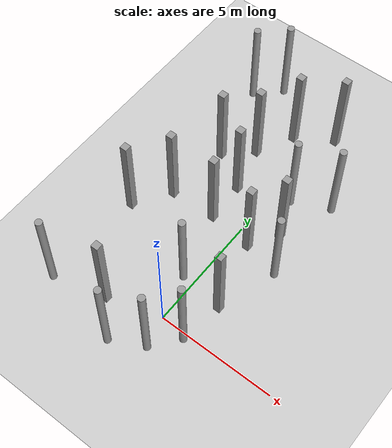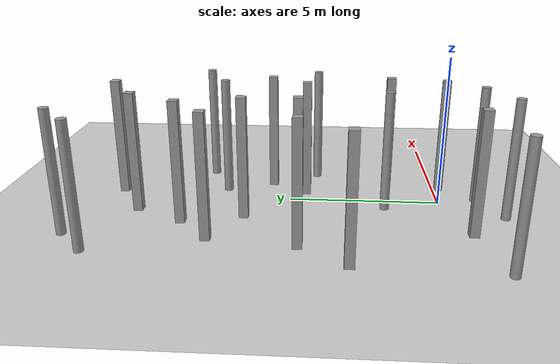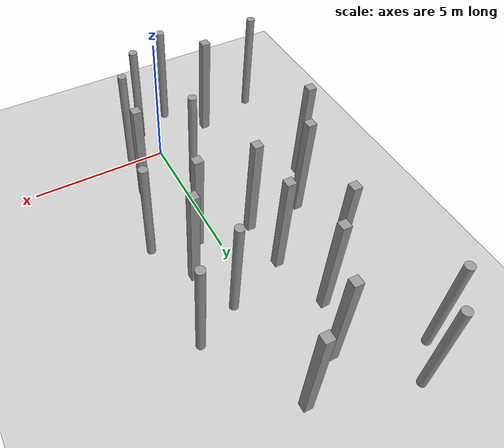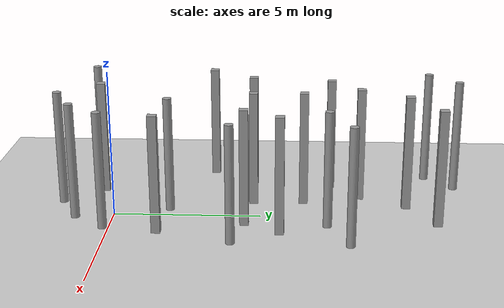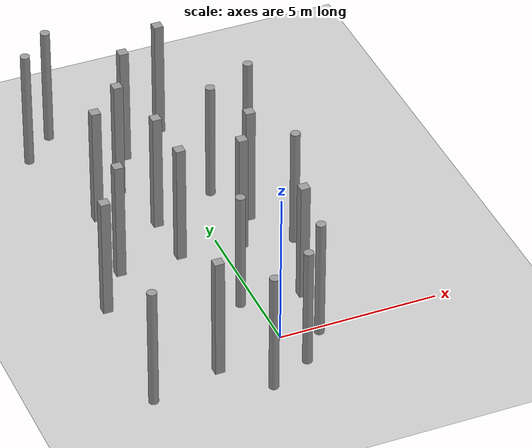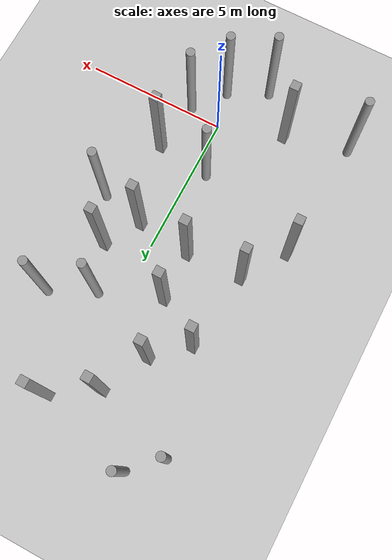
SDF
<sdf version="1.6">
 <world name="default">
  <model name="ground_plane">
   <static>1</static>
   <link name="link">
    <collision name="collision">
     <geometry><plane><normal>0 0 1</normal><size>100 100</size></plane></geometry>
    </collision>
    <visual name="visual">
     <cast_shadows>0</cast_shadows>
     <geometry><plane><normal>0 0 1</normal><size>100 100</size></plane></geometry>
     <material>
      <script><uri>file://media/materials/scripts/gazebo.material</uri><name>Gazebo/Gray</name></script>
     </material>
    </visual>
   </link>
  </model>
  <model name="unit_box">
   <link name="link">
    <inertial>
     <mass>1000</mass>
     <inertia><ixx>166.667</ixx><ixy>0</ixy><ixz>0</ixz><iyy>166.667</iyy><iyz>0</iyz><izz>166.667</izz></inertia>
    </inertial>
    <visual name="visual">
     <geometry><box><size>0.3 0.3 4</size></box></geometry>
     <material>
      <script><name>Gazebo/Grey</name><uri>file://media/materials/scripts/gazebo.material</uri></script>
      <shader type="vertex"><normal_map>__default__</normal_map></shader>
      <ambient>0.3 0.3 0.3 1</ambient>
      <diffuse>0.7 0.7 0.7 1</diffuse>
      <specular>0.01 0.01 0.01 1</specular>
      <emissive>0 0 0 1</emissive>
     </material>
    </visual>
    <collision name="collision">
     <geometry><box><size>0.3 0.3 4</size></box></geometry>
     <surface>
      <friction>
       <ode><mu>1</mu><mu2>1</mu2><fdir1>0 0 0</fdir1><slip1>0</slip1><slip2>0</slip2></ode>
       <torsional>
        <coefficient>1</coefficient>
        <patch_radius>0</patch_radius>
        <surface_radius>0</surface_radius>
        <use_patch_radius>1</use_patch_radius>
        <ode><slip>0</slip></ode>
       </torsional>
      </friction>
      <bounce><restitution_coefficient>0</restitution_coefficient><threshold>1e+06</threshold></bounce>
      <contact>
       <collide_without_contact>0</collide_without_contact>
       <collide_without_contact_bitmask>1</collide_without_contact_bitmask>
       <collide_bitmask>1</collide_bitmask>
       <ode>
        <soft_cfm>0</soft_cfm>
        <soft_erp>0.2</soft_erp>
        <kp>1e+13</kp>
        <kd>1</kd>
        <max_vel>0.01</max_vel>
        <min_depth>0</min_depth>
       </ode>
       <bullet>
        <split_impulse>1</split_impulse>
        <split_impulse_penetration_threshold>-0.01</split_impulse_penetration_threshold>
        <soft_cfm>0</soft_cfm>
        <soft_erp>0.2</soft_erp>
        <kp>1e+13</kp>
        <kd>1</kd>
       </bullet>
      </contact>
     </surface>
    </collision>
   </link>
   <static>0</static>
   <pose>-1.26727 4.71517 2 3e-05 2e-06 -0.004701</pose>
  </model>
  <model name="unit_box_clone">
   <link name="link">
    <inertial>
     <mass>1000</mass>
     <inertia><ixx>166.667</ixx><ixy>0</ixy><ixz>0</ixz><iyy>166.667</iyy><iyz>0</iyz><izz>166.667</izz></inertia>
    </inertial>
    <visual name="visual">
     <geometry><box><size>0.3 0.3 4</size></box></geometry>
     <material>
      <script><name>Gazebo/Grey</name><uri>file://media/materials/scripts/gazebo.material</uri></script>
      <shader type="vertex"><normal_map>__default__</normal_map></shader>
      <ambient>0.3 0.3 0.3 1</ambient>
      <diffuse>0.7 0.7 0.7 1</diffuse>
      <specular>0.01 0.01 0.01 1</specular>
      <emissive>0 0 0 1</emissive>
     </material>
    </visual>
    <collision name="collision">
     <geometry><box><size>0.3 0.3 4</size></box></geometry>
     <surface>
      <friction>
       <ode><mu>1</mu><mu2>1</mu2><fdir1>0 0 0</fdir1><slip1>0</slip1><slip2>0</slip2></ode>
       <torsional>
        <coefficient>1</coefficient>
        <patch_radius>0</patch_radius>
        <surface_radius>0</surface_radius>
        <use_patch_radius>1</use_patch_radius>
        <ode><slip>0</slip></ode>
       </torsional>
      </friction>
      <bounce><restitution_coefficient>0</restitution_coefficient><threshold>1e+06</threshold></bounce>
      <contact>
       <collide_without_contact>0</collide_without_contact>
       <collide_without_contact_bitmask>1</collide_without_contact_bitmask>
       <collide_bitmask>1</collide_bitmask>
       <ode>
        <soft_cfm>0</soft_cfm>
        <soft_erp>0.2</soft_erp>
        <kp>1e+13</kp>
        <kd>1</kd>
        <max_vel>0.01</max_vel>
        <min_depth>0</min_depth>
       </ode>
       <bullet>
        <split_impulse>1</split_impulse>
        <split_impulse_penetration_threshold>-0.01</split_impulse_penetration_threshold>
        <soft_cfm>0</soft_cfm>
        <soft_erp>0.2</soft_erp>
        <kp>1e+13</kp>
        <kd>1</kd>
       </bullet>
      </contact>
     </surface>
    </collision>
   </link>
   <static>0</static>
   <pose>-2.25019 -0.681054 2 -0 2e-06 -0.006906</pose>
  </model>
  <model name="unit_box_clone_1">
   <link name="link">
    <inertial>
     <mass>1000</mass>
     <inertia><ixx>166.667</ixx><ixy>0</ixy><ixz>0</ixz><iyy>166.667</iyy><iyz>0</iyz><izz>166.667</izz></inertia>
    </inertial>
    <visual name="visual">
     <geometry><box><size>0.3 0.3 4</size></box></geometry>
     <material>
      <script><name>Gazebo/Grey</name><uri>file://media/materials/scripts/gazebo.material</uri></script>
      <shader type="vertex"><normal_map>__default__</normal_map></shader>
      <ambient>0.3 0.3 0.3 1</ambient>
      <diffuse>0.7 0.7 0.7 1</diffuse>
      <specular>0.01 0.01 0.01 1</specular>
      <emissive>0 0 0 1</emissive>
     </material>
    </visual>
    <collision name="collision">
     <geometry><box><size>0.3 0.3 4</size></box></geometry>
     <surface>
      <friction>
       <ode><mu>1</mu><mu2>1</mu2><fdir1>0 0 0</fdir1><slip1>0</slip1><slip2>0</slip2></ode>
       <torsional>
        <coefficient>1</coefficient>
        <patch_radius>0</patch_radius>
        <surface_radius>0</surface_radius>
        <use_patch_radius>1</use_patch_radius>
        <ode><slip>0</slip></ode>
       </torsional>
      </friction>
      <bounce><restitution_coefficient>0</restitution_coefficient><threshold>1e+06</threshold></bounce>
      <contact>
       <collide_without_contact>0</collide_without_contact>
       <collide_without_contact_bitmask>1</collide_without_contact_bitmask>
       <collide_bitmask>1</collide_bitmask>
       <ode>
        <soft_cfm>0</soft_cfm>
        <soft_erp>0.2</soft_erp>
        <kp>1e+13</kp>
        <kd>1</kd>
        <max_vel>0.01</max_vel>
        <min_depth>0</min_depth>
       </ode>
       <bullet>
        <split_impulse>1</split_impulse>
        <split_impulse_penetration_threshold>-0.01</split_impulse_penetration_threshold>
        <soft_cfm>0</soft_cfm>
        <soft_erp>0.2</soft_erp>
        <kp>1e+13</kp>
        <kd>1</kd>
       </bullet>
      </contact>
     </surface>
    </collision>
   </link>
   <static>0</static>
   <pose>-2.89921 7.41403 2 -1.9e-05 4e-06 -0.002147</pose>
  </model>
  <model name="unit_box_clone_19">
   <link name="link">
    <inertial>
     <mass>1000</mass>
     <inertia><ixx>166.667</ixx><ixy>0</ixy><ixz>0</ixz><iyy>166.667</iyy><iyz>0</iyz><izz>166.667</izz></inertia>
    </inertial>
    <visual name="visual">
     <geometry><box><size>0.3 0.3 4</size></box></geometry>
     <material>
      <script><name>Gazebo/Grey</name><uri>file://media/materials/scripts/gazebo.material</uri></script>
      <shader type="vertex"><normal_map>__default__</normal_map></shader>
      <ambient>0.3 0.3 0.3 1</ambient>
      <diffuse>0.7 0.7 0.7 1</diffuse>
      <specular>0.01 0.01 0.01 1</specular>
      <emissive>0 0 0 1</emissive>
     </material>
    </visual>
    <collision name="collision">
     <geometry><box><size>0.3 0.3 4</size></box></geometry>
     <surface>
      <friction>
       <ode><mu>1</mu><mu2>1</mu2><fdir1>0 0 0</fdir1><slip1>0</slip1><slip2>0</slip2></ode>
       <torsional>
        <coefficient>1</coefficient>
        <patch_radius>0</patch_radius>
        <surface_radius>0</surface_radius>
        <use_patch_radius>1</use_patch_radius>
        <ode><slip>0</slip></ode>
       </torsional>
      </friction>
      <bounce><restitution_coefficient>0</restitution_coefficient><threshold>1e+06</threshold></bounce>
      <contact>
       <collide_without_contact>0</collide_without_contact>
       <collide_without_contact_bitmask>1</collide_without_contact_bitmask>
       <collide_bitmask>1</collide_bitmask>
       <ode>
        <soft_cfm>0</soft_cfm>
        <soft_erp>0.2</soft_erp>
        <kp>1e+13</kp>
        <kd>1</kd>
        <max_vel>0.01</max_vel>
        <min_depth>0</min_depth>
       </ode>
       <bullet>
        <split_impulse>1</split_impulse>
        <split_impulse_penetration_threshold>-0.01</split_impulse_penetration_threshold>
        <soft_cfm>0</soft_cfm>
        <soft_erp>0.2</soft_erp>
        <kp>1e+13</kp>
        <kd>1</kd>
       </bullet>
      </contact>
     </surface>
    </collision>
   </link>
   <static>0</static>
   <pose>-1.32794 6.44926 2 3e-05 2e-06 -0.004701</pose>
  </model>
  <model name="unit_box_clone_20">
   <link name="link">
    <inertial>
     <mass>1000</mass>
     <inertia><ixx>166.667</ixx><ixy>0</ixy><ixz>0</ixz><iyy>166.667</iyy><iyz>0</iyz><izz>166.667</izz></inertia>
    </inertial>
    <visual name="visual">
     <geometry><box><size>0.3 0.3 4</size></box></geometry>
     <material>
      <script><name>Gazebo/Grey</name><uri>file://media/materials/scripts/gazebo.material</uri></script>
      <shader type="vertex"><normal_map>__default__</normal_map></shader>
      <ambient>0.3 0.3 0.3 1</ambient>
      <diffuse>0.7 0.7 0.7 1</diffuse>
      <specular>0.01 0.01 0.01 1</specular>
      <emissive>0 0 0 1</emissive>
     </material>
    </visual>
    <collision name="collision">
     <geometry><box><size>0.3 0.3 4</size></box></geometry>
     <surface>
      <friction>
       <ode><mu>1</mu><mu2>1</mu2><fdir1>0 0 0</fdir1><slip1>0</slip1><slip2>0</slip2></ode>
       <torsional>
        <coefficient>1</coefficient>
        <patch_radius>0</patch_radius>
        <surface_radius>0</surface_radius>
        <use_patch_radius>1</use_patch_radius>
        <ode><slip>0</slip></ode>
       </torsional>
      </friction>
      <bounce><restitution_coefficient>0</restitution_coefficient><threshold>1e+06</threshold></bounce>
      <contact>
       <collide_without_contact>0</collide_without_contact>
       <collide_without_contact_bitmask>1</collide_without_contact_bitmask>
       <collide_bitmask>1</collide_bitmask>
       <ode>
        <soft_cfm>0</soft_cfm>
        <soft_erp>0.2</soft_erp>
        <kp>1e+13</kp>
        <kd>1</kd>
        <max_vel>0.01</max_vel>
        <min_depth>0</min_depth>
       </ode>
       <bullet>
        <split_impulse>1</split_impulse>
        <split_impulse_penetration_threshold>-0.01</split_impulse_penetration_threshold>
        <soft_cfm>0</soft_cfm>
        <soft_erp>0.2</soft_erp>
        <kp>1e+13</kp>
        <kd>1</kd>
       </bullet>
      </contact>
     </surface>
    </collision>
   </link>
   <static>0</static>
   <pose>0.641915 4.48461 2.00001 -8.9e-05 3e-06 -0.000521</pose>
  </model>
  <model name="unit_box_clone_21">
   <link name="link">
    <inertial>
     <mass>1000</mass>
     <inertia><ixx>166.667</ixx><ixy>0</ixy><ixz>0</ixz><iyy>166.667</iyy><iyz>0</iyz><izz>166.667</izz></inertia>
    </inertial>
    <visual name="visual">
     <geometry><box><size>0.3 0.3 4</size></box></geometry>
     <material>
      <script><name>Gazebo/Grey</name><uri>file://media/materials/scripts/gazebo.material</uri></script>
      <shader type="vertex"><normal_map>__default__</normal_map></shader>
      <ambient>0.3 0.3 0.3 1</ambient>
      <diffuse>0.7 0.7 0.7 1</diffuse>
      <specular>0.01 0.01 0.01 1</specular>
      <emissive>0 0 0 1</emissive>
     </material>
    </visual>
    <collision name="collision">
     <geometry><box><size>0.3 0.3 4</size></box></geometry>
     <surface>
      <friction>
       <ode><mu>1</mu><mu2>1</mu2><fdir1>0 0 0</fdir1><slip1>0</slip1><slip2>0</slip2></ode>
       <torsional>
        <coefficient>1</coefficient>
        <patch_radius>0</patch_radius>
        <surface_radius>0</surface_radius>
        <use_patch_radius>1</use_patch_radius>
        <ode><slip>0</slip></ode>
       </torsional>
      </friction>
      <bounce><restitution_coefficient>0</restitution_coefficient><threshold>1e+06</threshold></bounce>
      <contact>
       <collide_without_contact>0</collide_without_contact>
       <collide_without_contact_bitmask>1</collide_without_contact_bitmask>
       <collide_bitmask>1</collide_bitmask>
       <ode>
        <soft_cfm>0</soft_cfm>
        <soft_erp>0.2</soft_erp>
        <kp>1e+13</kp>
        <kd>1</kd>
        <max_vel>0.01</max_vel>
        <min_depth>0</min_depth>
       </ode>
       <bullet>
        <split_impulse>1</split_impulse>
        <split_impulse_penetration_threshold>-0.01</split_impulse_penetration_threshold>
        <soft_cfm>0</soft_cfm>
        <soft_erp>0.2</soft_erp>
        <kp>1e+13</kp>
        <kd>1</kd>
       </bullet>
      </contact>
     </surface>
    </collision>
   </link>
   <static>0</static>
   <pose>-1.80198 8.4163 2.00003 -0.000171 6e-06 -0.007714</pose>
  </model>
  <model name="unit_box_clone_22">
   <link name="link">
    <inertial>
     <mass>1000</mass>
     <inertia><ixx>166.667</ixx><ixy>0</ixy><ixz>0</ixz><iyy>166.667</iyy><iyz>0</iyz><izz>166.667</izz></inertia>
    </inertial>
    <visual name="visual">
     <geometry><box><size>0.3 0.3 4</size></box></geometry>
     <material>
      <script><name>Gazebo/Grey</name><uri>file://media/materials/scripts/gazebo.material</uri></script>
      <shader type="vertex"><normal_map>__default__</normal_map></shader>
      <ambient>0.3 0.3 0.3 1</ambient>
      <diffuse>0.7 0.7 0.7 1</diffuse>
      <specular>0.01 0.01 0.01 1</specular>
      <emissive>0 0 0 1</emissive>
     </material>
    </visual>
    <collision name="collision">
     <geometry><box><size>0.3 0.3 4</size></box></geometry>
     <surface>
      <friction>
       <ode><mu>1</mu><mu2>1</mu2><fdir1>0 0 0</fdir1><slip1>0</slip1><slip2>0</slip2></ode>
       <torsional>
        <coefficient>1</coefficient>
        <patch_radius>0</patch_radius>
        <surface_radius>0</surface_radius>
        <use_patch_radius>1</use_patch_radius>
        <ode><slip>0</slip></ode>
       </torsional>
      </friction>
      <bounce><restitution_coefficient>0</restitution_coefficient><threshold>1e+06</threshold></bounce>
      <contact>
       <collide_without_contact>0</collide_without_contact>
       <collide_without_contact_bitmask>1</collide_without_contact_bitmask>
       <collide_bitmask>1</collide_bitmask>
       <ode>
        <soft_cfm>0</soft_cfm>
        <soft_erp>0.2</soft_erp>
        <kp>1e+13</kp>
        <kd>1</kd>
        <max_vel>0.01</max_vel>
        <min_depth>0</min_depth>
       </ode>
       <bullet>
        <split_impulse>1</split_impulse>
        <split_impulse_penetration_threshold>-0.01</split_impulse_penetration_threshold>
        <soft_cfm>0</soft_cfm>
        <soft_erp>0.2</soft_erp>
        <kp>1e+13</kp>
        <kd>1</kd>
       </bullet>
      </contact>
     </surface>
    </collision>
   </link>
   <static>0</static>
   <pose>-0.999845 10 2.00001 -4e-05 9e-06 -0.013989</pose>
  </model>
  <model name="unit_box_clone_26">
   <link name="link">
    <inertial>
     <mass>1000</mass>
     <inertia><ixx>166.667</ixx><ixy>0</ixy><ixz>0</ixz><iyy>166.667</iyy><iyz>0</iyz><izz>166.667</izz></inertia>
    </inertial>
    <visual name="visual">
     <geometry><box><size>0.3 0.3 4</size></box></geometry>
     <material>
      <script><name>Gazebo/Grey</name><uri>file://media/materials/scripts/gazebo.material</uri></script>
      <shader type="vertex"><normal_map>__default__</normal_map></shader>
      <ambient>0.3 0.3 0.3 1</ambient>
      <diffuse>0.7 0.7 0.7 1</diffuse>
      <specular>0.01 0.01 0.01 1</specular>
      <emissive>0 0 0 1</emissive>
     </material>
    </visual>
    <collision name="collision">
     <geometry><box><size>0.3 0.3 4</size></box></geometry>
     <surface>
      <friction>
       <ode><mu>1</mu><mu2>1</mu2><fdir1>0 0 0</fdir1><slip1>0</slip1><slip2>0</slip2></ode>
       <torsional>
        <coefficient>1</coefficient>
        <patch_radius>0</patch_radius>
        <surface_radius>0</surface_radius>
        <use_patch_radius>1</use_patch_radius>
        <ode><slip>0</slip></ode>
       </torsional>
      </friction>
      <bounce><restitution_coefficient>0</restitution_coefficient><threshold>1e+06</threshold></bounce>
      <contact>
       <collide_without_contact>0</collide_without_contact>
       <collide_without_contact_bitmask>1</collide_without_contact_bitmask>
       <collide_bitmask>1</collide_bitmask>
       <ode>
        <soft_cfm>0</soft_cfm>
        <soft_erp>0.2</soft_erp>
        <kp>1e+13</kp>
        <kd>1</kd>
        <max_vel>0.01</max_vel>
        <min_depth>0</min_depth>
       </ode>
       <bullet>
        <split_impulse>1</split_impulse>
        <split_impulse_penetration_threshold>-0.01</split_impulse_penetration_threshold>
        <soft_cfm>0</soft_cfm>
        <soft_erp>0.2</soft_erp>
        <kp>1e+13</kp>
        <kd>1</kd>
       </bullet>
      </contact>
     </surface>
    </collision>
   </link>
   <static>0</static>
   <pose>-3.24148 4.64145 2.00001 5.3e-05 3e-06 -0.003484</pose>
  </model>
  <model name="unit_cylinder_clone_3">
   <link name="link">
    <inertial>
     <mass>1000</mass>
     <inertia><ixx>145.833</ixx><ixy>0</ixy><ixz>0</ixz><iyy>145.833</iyy><iyz>0</iyz><izz>125</izz></inertia>
    </inertial>
    <visual name="visual">
     <geometry><cylinder><radius>0.15</radius><length>4</length></cylinder></geometry>
     <material>
      <script><name>Gazebo/Grey</name><uri>file://media/materials/scripts/gazebo.material</uri></script>
      <shader type="vertex"><normal_map>__default__</normal_map></shader>
      <ambient>0.3 0.3 0.3 1</ambient>
      <diffuse>0.7 0.7 0.7 1</diffuse>
      <specular>0.01 0.01 0.01 1</specular>
      <emissive>0 0 0 1</emissive>
     </material>
    </visual>
    <collision name="collision">
     <geometry><cylinder><radius>0.15</radius><length>4</length></cylinder></geometry>
     <surface>
      <friction>
       <ode><mu>1</mu><mu2>1</mu2><fdir1>0 0 0</fdir1><slip1>0</slip1><slip2>0</slip2></ode>
       <torsional>
        <coefficient>1</coefficient>
        <patch_radius>0</patch_radius>
        <surface_radius>0</surface_radius>
        <use_patch_radius>1</use_patch_radius>
        <ode><slip>0</slip></ode>
       </torsional>
      </friction>
      <bounce><restitution_coefficient>0</restitution_coefficient><threshold>1e+06</threshold></bounce>
      <contact>
       <collide_without_contact>0</collide_without_contact>
       <collide_without_contact_bitmask>1</collide_without_contact_bitmask>
       <collide_bitmask>1</collide_bitmask>
       <ode>
        <soft_cfm>0</soft_cfm>
        <soft_erp>0.2</soft_erp>
        <kp>1e+13</kp>
        <kd>1</kd>
        <max_vel>0.01</max_vel>
        <min_depth>0</min_depth>
       </ode>
       <bullet>
        <split_impulse>1</split_impulse>
        <split_impulse_penetration_threshold>-0.01</split_impulse_penetration_threshold>
        <soft_cfm>0</soft_cfm>
        <soft_erp>0.2</soft_erp>
        <kp>1e+13</kp>
        <kd>1</kd>
       </bullet>
      </contact>
     </surface>
    </collision>
   </link>
   <static>0</static>
   <pose>0.763548 7.25614 1.99998 -2e-06 -0 -0.17322</pose>
  </model>
  <model name="unit_cylinder_clone_1_clone_8">
   <link name="link">
    <inertial>
     <mass>1000</mass>
     <inertia><ixx>145.833</ixx><ixy>0</ixy><ixz>0</ixz><iyy>145.833</iyy><iyz>0</iyz><izz>125</izz></inertia>
    </inertial>
    <visual name="visual">
     <geometry><cylinder><radius>0.15</radius><length>4</length></cylinder></geometry>
     <material>
      <script><name>Gazebo/Grey</name><uri>file://media/materials/scripts/gazebo.material</uri></script>
      <shader type="vertex"><normal_map>__default__</normal_map></shader>
      <ambient>0.3 0.3 0.3 1</ambient>
      <diffuse>0.7 0.7 0.7 1</diffuse>
      <specular>0.01 0.01 0.01 1</specular>
      <emissive>0 0 0 1</emissive>
     </material>
    </visual>
    <collision name="collision">
     <geometry><cylinder><radius>0.15</radius><length>4</length></cylinder></geometry>
     <surface>
      <friction>
       <ode><mu>1</mu><mu2>1</mu2><fdir1>0 0 0</fdir1><slip1>0</slip1><slip2>0</slip2></ode>
       <torsional>
        <coefficient>1</coefficient>
        <patch_radius>0</patch_radius>
        <surface_radius>0</surface_radius>
        <use_patch_radius>1</use_patch_radius>
        <ode><slip>0</slip></ode>
       </torsional>
      </friction>
      <bounce><restitution_coefficient>0</restitution_coefficient><threshold>1e+06</threshold></bounce>
      <contact>
       <collide_without_contact>0</collide_without_contact>
       <collide_without_contact_bitmask>1</collide_without_contact_bitmask>
       <collide_bitmask>1</collide_bitmask>
       <ode>
        <soft_cfm>0</soft_cfm>
        <soft_erp>0.2</soft_erp>
        <kp>1e+13</kp>
        <kd>1</kd>
        <max_vel>0.01</max_vel>
        <min_depth>0</min_depth>
       </ode>
       <bullet>
        <split_impulse>1</split_impulse>
        <split_impulse_penetration_threshold>-0.01</split_impulse_penetration_threshold>
        <soft_cfm>0</soft_cfm>
        <soft_erp>0.2</soft_erp>
        <kp>1e+13</kp>
        <kd>1</kd>
       </bullet>
      </contact>
     </surface>
    </collision>
   </link>
   <static>0</static>
   <pose>0.29317 -1.28277 1.99995 -0.000273 -6e-06 -0.814634</pose>
  </model>
  <model name="unit_cylinder_clone_1_clone_11">
   <link name="link">
    <inertial>
     <mass>1000</mass>
     <inertia><ixx>145.833</ixx><ixy>0</ixy><ixz>0</ixz><iyy>145.833</iyy><iyz>0</iyz><izz>125</izz></inertia>
    </inertial>
    <visual name="visual">
     <geometry><cylinder><radius>0.15</radius><length>4</length></cylinder></geometry>
     <material>
      <script><name>Gazebo/Grey</name><uri>file://media/materials/scripts/gazebo.material</uri></script>
      <shader type="vertex"><normal_map>__default__</normal_map></shader>
      <ambient>0.3 0.3 0.3 1</ambient>
      <diffuse>0.7 0.7 0.7 1</diffuse>
      <specular>0.01 0.01 0.01 1</specular>
      <emissive>0 0 0 1</emissive>
     </material>
    </visual>
    <collision name="collision">
     <geometry><cylinder><radius>0.15</radius><length>4</length></cylinder></geometry>
     <surface>
      <friction>
       <ode><mu>1</mu><mu2>1</mu2><fdir1>0 0 0</fdir1><slip1>0</slip1><slip2>0</slip2></ode>
       <torsional>
        <coefficient>1</coefficient>
        <patch_radius>0</patch_radius>
        <surface_radius>0</surface_radius>
        <use_patch_radius>1</use_patch_radius>
        <ode><slip>0</slip></ode>
       </torsional>
      </friction>
      <bounce><restitution_coefficient>0</restitution_coefficient><threshold>1e+06</threshold></bounce>
      <contact>
       <collide_without_contact>0</collide_without_contact>
       <collide_without_contact_bitmask>1</collide_without_contact_bitmask>
       <collide_bitmask>1</collide_bitmask>
       <ode>
        <soft_cfm>0</soft_cfm>
        <soft_erp>0.2</soft_erp>
        <kp>1e+13</kp>
        <kd>1</kd>
        <max_vel>0.01</max_vel>
        <min_depth>0</min_depth>
       </ode>
       <bullet>
        <split_impulse>1</split_impulse>
        <split_impulse_penetration_threshold>-0.01</split_impulse_penetration_threshold>
        <soft_cfm>0</soft_cfm>
        <soft_erp>0.2</soft_erp>
        <kp>1e+13</kp>
        <kd>1</kd>
       </bullet>
      </contact>
     </surface>
    </collision>
   </link>
   <static>0</static>
   <pose>-4.48804 -1.24577 1.99995 -0.000273 -5e-06 -0.813516</pose>
  </model>
  <model name="unit_cylinder_clone_1_clone_33">
   <link name="link">
    <inertial>
     <mass>1000</mass>
     <inertia><ixx>145.833</ixx><ixy>0</ixy><ixz>0</ixz><iyy>145.833</iyy><iyz>0</iyz><izz>125</izz></inertia>
    </inertial>
    <visual name="visual">
     <geometry><cylinder><radius>0.15</radius><length>4</length></cylinder></geometry>
     <material>
      <script><name>Gazebo/Grey</name><uri>file://media/materials/scripts/gazebo.material</uri></script>
      <shader type="vertex"><normal_map>__default__</normal_map></shader>
      <ambient>0.3 0.3 0.3 1</ambient>
      <diffuse>0.7 0.7 0.7 1</diffuse>
      <specular>0.01 0.01 0.01 1</specular>
      <emissive>0 0 0 1</emissive>
     </material>
    </visual>
    <collision name="collision">
     <geometry><cylinder><radius>0.15</radius><length>4</length></cylinder></geometry>
     <surface>
      <friction>
       <ode><mu>1</mu><mu2>1</mu2><fdir1>0 0 0</fdir1><slip1>0</slip1><slip2>0</slip2></ode>
       <torsional>
        <coefficient>1</coefficient>
        <patch_radius>0</patch_radius>
        <surface_radius>0</surface_radius>
        <use_patch_radius>1</use_patch_radius>
        <ode><slip>0</slip></ode>
       </torsional>
      </friction>
      <bounce><restitution_coefficient>0</restitution_coefficient><threshold>1e+06</threshold></bounce>
      <contact>
       <collide_without_contact>0</collide_without_contact>
       <collide_without_contact_bitmask>1</collide_without_contact_bitmask>
       <collide_bitmask>1</collide_bitmask>
       <ode>
        <soft_cfm>0</soft_cfm>
        <soft_erp>0.2</soft_erp>
        <kp>1e+13</kp>
        <kd>1</kd>
        <max_vel>0.01</max_vel>
        <min_depth>0</min_depth>
       </ode>
       <bullet>
        <split_impulse>1</split_impulse>
        <split_impulse_penetration_threshold>-0.01</split_impulse_penetration_threshold>
        <soft_cfm>0</soft_cfm>
        <soft_erp>0.2</soft_erp>
        <kp>1e+13</kp>
        <kd>1</kd>
       </bullet>
      </contact>
     </surface>
    </collision>
   </link>
   <static>0</static>
   <pose>-1.05681 -1.97024 1.99995 -0.000273 -4e-06 -0.807582</pose>
  </model>
  <model name="unit_cylinder_clone_1_clone_7_clone">
   <link name="link">
    <inertial>
     <mass>1000</mass>
     <inertia><ixx>145.833</ixx><ixy>0</ixy><ixz>0</ixz><iyy>145.833</iyy><iyz>0</iyz><izz>125</izz></inertia>
    </inertial>
    <visual name="visual">
     <geometry><cylinder><radius>0.15</radius><length>4</length></cylinder></geometry>
     <material>
      <script><name>Gazebo/Grey</name><uri>file://media/materials/scripts/gazebo.material</uri></script>
      <shader type="vertex"><normal_map>__default__</normal_map></shader>
      <ambient>0.3 0.3 0.3 1</ambient>
      <diffuse>0.7 0.7 0.7 1</diffuse>
      <specular>0.01 0.01 0.01 1</specular>
      <emissive>0 0 0 1</emissive>
     </material>
    </visual>
    <collision name="collision">
     <geometry><cylinder><radius>0.15</radius><length>4</length></cylinder></geometry>
     <surface>
      <friction>
       <ode><mu>1</mu><mu2>1</mu2><fdir1>0 0 0</fdir1><slip1>0</slip1><slip2>0</slip2></ode>
       <torsional>
        <coefficient>1</coefficient>
        <patch_radius>0</patch_radius>
        <surface_radius>0</surface_radius>
        <use_patch_radius>1</use_patch_radius>
        <ode><slip>0</slip></ode>
       </torsional>
      </friction>
      <bounce><restitution_coefficient>0</restitution_coefficient><threshold>1e+06</threshold></bounce>
      <contact>
       <collide_without_contact>0</collide_without_contact>
       <collide_without_contact_bitmask>1</collide_without_contact_bitmask>
       <collide_bitmask>1</collide_bitmask>
       <ode>
        <soft_cfm>0</soft_cfm>
        <soft_erp>0.2</soft_erp>
        <kp>1e+13</kp>
        <kd>1</kd>
        <max_vel>0.01</max_vel>
        <min_depth>0</min_depth>
       </ode>
       <bullet>
        <split_impulse>1</split_impulse>
        <split_impulse_penetration_threshold>-0.01</split_impulse_penetration_threshold>
        <soft_cfm>0</soft_cfm>
        <soft_erp>0.2</soft_erp>
        <kp>1e+13</kp>
        <kd>1</kd>
       </bullet>
      </contact>
     </surface>
    </collision>
   </link>
   <static>0</static>
   <pose>2.21377 4.11977 1.99995 -0.000273 -6e-06 -0.815566</pose>
  </model>
  <model name="unit_cylinder_clone_1_clone_7_clone_2">
   <link name="link">
    <inertial>
     <mass>1000</mass>
     <inertia><ixx>145.833</ixx><ixy>0</ixy><ixz>0</ixz><iyy>145.833</iyy><iyz>0</iyz><izz>125</izz></inertia>
    </inertial>
    <visual name="visual">
     <geometry><cylinder><radius>0.15</radius><length>4</length></cylinder></geometry>
     <material>
      <script><name>Gazebo/Grey</name><uri>file://media/materials/scripts/gazebo.material</uri></script>
      <shader type="vertex"><normal_map>__default__</normal_map></shader>
      <ambient>0.3 0.3 0.3 1</ambient>
      <diffuse>0.7 0.7 0.7 1</diffuse>
      <specular>0.01 0.01 0.01 1</specular>
      <emissive>0 0 0 1</emissive>
     </material>
    </visual>
    <collision name="collision">
     <geometry><cylinder><radius>0.15</radius><length>4</length></cylinder></geometry>
     <surface>
      <friction>
       <ode><mu>1</mu><mu2>1</mu2><fdir1>0 0 0</fdir1><slip1>0</slip1><slip2>0</slip2></ode>
       <torsional>
        <coefficient>1</coefficient>
        <patch_radius>0</patch_radius>
        <surface_radius>0</surface_radius>
        <use_patch_radius>1</use_patch_radius>
        <ode><slip>0</slip></ode>
       </torsional>
      </friction>
      <bounce><restitution_coefficient>0</restitution_coefficient><threshold>1e+06</threshold></bounce>
      <contact>
       <collide_without_contact>0</collide_without_contact>
       <collide_without_contact_bitmask>1</collide_without_contact_bitmask>
       <collide_bitmask>1</collide_bitmask>
       <ode>
        <soft_cfm>0</soft_cfm>
        <soft_erp>0.2</soft_erp>
        <kp>1e+13</kp>
        <kd>1</kd>
        <max_vel>0.01</max_vel>
        <min_depth>0</min_depth>
       </ode>
       <bullet>
        <split_impulse>1</split_impulse>
        <split_impulse_penetration_threshold>-0.01</split_impulse_penetration_threshold>
        <soft_cfm>0</soft_cfm>
        <soft_erp>0.2</soft_erp>
        <kp>1e+13</kp>
        <kd>1</kd>
       </bullet>
      </contact>
     </surface>
    </collision>
   </link>
   <static>0</static>
   <pose>-2.83041 11.8773 1.99995 -0.000273 -7e-06 -0.818374</pose>
  </model>
  <model name="unit_cylinder_clone_1_clone_7_clone_7">
   <link name="link">
    <inertial>
     <mass>1000</mass>
     <inertia><ixx>145.833</ixx><ixy>0</ixy><ixz>0</ixz><iyy>145.833</iyy><iyz>0</iyz><izz>125</izz></inertia>
    </inertial>
    <visual name="visual">
     <geometry><cylinder><radius>0.15</radius><length>4</length></cylinder></geometry>
     <material>
      <script><name>Gazebo/Grey</name><uri>file://media/materials/scripts/gazebo.material</uri></script>
      <shader type="vertex"><normal_map>__default__</normal_map></shader>
      <ambient>0.3 0.3 0.3 1</ambient>
      <diffuse>0.7 0.7 0.7 1</diffuse>
      <specular>0.01 0.01 0.01 1</specular>
      <emissive>0 0 0 1</emissive>
     </material>
    </visual>
    <collision name="collision">
     <geometry><cylinder><radius>0.15</radius><length>4</length></cylinder></geometry>
     <surface>
      <friction>
       <ode><mu>1</mu><mu2>1</mu2><fdir1>0 0 0</fdir1><slip1>0</slip1><slip2>0</slip2></ode>
       <torsional>
        <coefficient>1</coefficient>
        <patch_radius>0</patch_radius>
        <surface_radius>0</surface_radius>
        <use_patch_radius>1</use_patch_radius>
        <ode><slip>0</slip></ode>
       </torsional>
      </friction>
      <bounce><restitution_coefficient>0</restitution_coefficient><threshold>1e+06</threshold></bounce>
      <contact>
       <collide_without_contact>0</collide_without_contact>
       <collide_without_contact_bitmask>1</collide_without_contact_bitmask>
       <collide_bitmask>1</collide_bitmask>
       <ode>
        <soft_cfm>0</soft_cfm>
        <soft_erp>0.2</soft_erp>
        <kp>1e+13</kp>
        <kd>1</kd>
        <max_vel>0.01</max_vel>
        <min_depth>0</min_depth>
       </ode>
       <bullet>
        <split_impulse>1</split_impulse>
        <split_impulse_penetration_threshold>-0.01</split_impulse_penetration_threshold>
        <soft_cfm>0</soft_cfm>
        <soft_erp>0.2</soft_erp>
        <kp>1e+13</kp>
        <kd>1</kd>
       </bullet>
      </contact>
     </surface>
    </collision>
   </link>
   <static>0</static>
   <pose>-3.8276 10.9318 1.99995 -0.000273 -7e-06 -0.818374</pose>
  </model>
  <model name="unit_cylinder_clone_1_clone_7_clone_10">
   <link name="link">
    <inertial>
     <mass>1000</mass>
     <inertia><ixx>145.833</ixx><ixy>0</ixy><ixz>0</ixz><iyy>145.833</iyy><iyz>0</iyz><izz>125</izz></inertia>
    </inertial>
    <visual name="visual">
     <geometry><cylinder><radius>0.15</radius><length>4</length></cylinder></geometry>
     <material>
      <script><name>Gazebo/Grey</name><uri>file://media/materials/scripts/gazebo.material</uri></script>
      <shader type="vertex"><normal_map>__default__</normal_map></shader>
      <ambient>0.3 0.3 0.3 1</ambient>
      <diffuse>0.7 0.7 0.7 1</diffuse>
      <specular>0.01 0.01 0.01 1</specular>
      <emissive>0 0 0 1</emissive>
     </material>
    </visual>
    <collision name="collision">
     <geometry><cylinder><radius>0.15</radius><length>4</length></cylinder></geometry>
     <surface>
      <friction>
       <ode><mu>1</mu><mu2>1</mu2><fdir1>0 0 0</fdir1><slip1>0</slip1><slip2>0</slip2></ode>
       <torsional>
        <coefficient>1</coefficient>
        <patch_radius>0</patch_radius>
        <surface_radius>0</surface_radius>
        <use_patch_radius>1</use_patch_radius>
        <ode><slip>0</slip></ode>
       </torsional>
      </friction>
      <bounce><restitution_coefficient>0</restitution_coefficient><threshold>1e+06</threshold></bounce>
      <contact>
       <collide_without_contact>0</collide_without_contact>
       <collide_without_contact_bitmask>1</collide_without_contact_bitmask>
       <collide_bitmask>1</collide_bitmask>
       <ode>
        <soft_cfm>0</soft_cfm>
        <soft_erp>0.2</soft_erp>
        <kp>1e+13</kp>
        <kd>1</kd>
        <max_vel>0.01</max_vel>
        <min_depth>0</min_depth>
       </ode>
       <bullet>
        <split_impulse>1</split_impulse>
        <split_impulse_penetration_threshold>-0.01</split_impulse_penetration_threshold>
        <soft_cfm>0</soft_cfm>
        <soft_erp>0.2</soft_erp>
        <kp>1e+13</kp>
        <kd>1</kd>
       </bullet>
      </contact>
     </surface>
    </collision>
   </link>
   <static>0</static>
   <pose>-0.495147 1.86076 1.99995 -0.000273 -4e-06 -0.809406</pose>
  </model>
  <model name="unit_cylinder_clone_7">
   <link name="link">
    <inertial>
     <mass>1000</mass>
     <inertia><ixx>145.833</ixx><ixy>0</ixy><ixz>0</ixz><iyy>145.833</iyy><iyz>0</iyz><izz>125</izz></inertia>
    </inertial>
    <visual name="visual">
     <geometry><cylinder><radius>0.15</radius><length>4</length></cylinder></geometry>
     <material>
      <script><name>Gazebo/Grey</name><uri>file://media/materials/scripts/gazebo.material</uri></script>
      <shader type="vertex"><normal_map>__default__</normal_map></shader>
      <ambient>0.3 0.3 0.3 1</ambient>
      <diffuse>0.7 0.7 0.7 1</diffuse>
      <specular>0.01 0.01 0.01 1</specular>
      <emissive>0 0 0 1</emissive>
     </material>
    </visual>
    <collision name="collision">
     <geometry><cylinder><radius>0.15</radius><length>4</length></cylinder></geometry>
     <surface>
      <friction>
       <ode><mu>1</mu><mu2>1</mu2><fdir1>0 0 0</fdir1><slip1>0</slip1><slip2>0</slip2></ode>
       <torsional>
        <coefficient>1</coefficient>
        <patch_radius>0</patch_radius>
        <surface_radius>0</surface_radius>
        <use_patch_radius>1</use_patch_radius>
        <ode><slip>0</slip></ode>
       </torsional>
      </friction>
      <bounce><restitution_coefficient>0</restitution_coefficient><threshold>1e+06</threshold></bounce>
      <contact>
       <collide_without_contact>0</collide_without_contact>
       <collide_without_contact_bitmask>1</collide_without_contact_bitmask>
       <collide_bitmask>1</collide_bitmask>
       <ode>
        <soft_cfm>0</soft_cfm>
        <soft_erp>0.2</soft_erp>
        <kp>1e+13</kp>
        <kd>1</kd>
        <max_vel>0.01</max_vel>
        <min_depth>0</min_depth>
       </ode>
       <bullet>
        <split_impulse>1</split_impulse>
        <split_impulse_penetration_threshold>-0.01</split_impulse_penetration_threshold>
        <soft_cfm>0</soft_cfm>
        <soft_erp>0.2</soft_erp>
        <kp>1e+13</kp>
        <kd>1</kd>
       </bullet>
      </contact>
     </surface>
    </collision>
   </link>
   <static>0</static>
   <pose>1.1486 -0.198084 1.99998 -2e-06 1e-06 -0.176983</pose>
  </model>
  <model name="unit_cylinder_clone_8">
   <link name="link">
    <inertial>
     <mass>1000</mass>
     <inertia><ixx>145.833</ixx><ixy>0</ixy><ixz>0</ixz><iyy>145.833</iyy><iyz>0</iyz><izz>125</izz></inertia>
    </inertial>
    <visual name="visual">
     <geometry><cylinder><radius>0.15</radius><length>4</length></cylinder></geometry>
     <material>
      <script><name>Gazebo/Grey</name><uri>file://media/materials/scripts/gazebo.material</uri></script>
      <shader type="vertex"><normal_map>__default__</normal_map></shader>
      <ambient>0.3 0.3 0.3 1</ambient>
      <diffuse>0.7 0.7 0.7 1</diffuse>
      <specular>0.01 0.01 0.01 1</specular>
      <emissive>0 0 0 1</emissive>
     </material>
    </visual>
    <collision name="collision">
     <geometry><cylinder><radius>0.15</radius><length>4</length></cylinder></geometry>
     <surface>
      <friction>
       <ode><mu>1</mu><mu2>1</mu2><fdir1>0 0 0</fdir1><slip1>0</slip1><slip2>0</slip2></ode>
       <torsional>
        <coefficient>1</coefficient>
        <patch_radius>0</patch_radius>
        <surface_radius>0</surface_radius>
        <use_patch_radius>1</use_patch_radius>
        <ode><slip>0</slip></ode>
       </torsional>
      </friction>
      <bounce><restitution_coefficient>0</restitution_coefficient><threshold>1e+06</threshold></bounce>
      <contact>
       <collide_without_contact>0</collide_without_contact>
       <collide_without_contact_bitmask>1</collide_without_contact_bitmask>
       <collide_bitmask>1</collide_bitmask>
       <ode>
        <soft_cfm>0</soft_cfm>
        <soft_erp>0.2</soft_erp>
        <kp>1e+13</kp>
        <kd>1</kd>
        <max_vel>0.01</max_vel>
        <min_depth>0</min_depth>
       </ode>
       <bullet>
        <split_impulse>1</split_impulse>
        <split_impulse_penetration_threshold>-0.01</split_impulse_penetration_threshold>
        <soft_cfm>0</soft_cfm>
        <soft_erp>0.2</soft_erp>
        <kp>1e+13</kp>
        <kd>1</kd>
       </bullet>
      </contact>
     </surface>
    </collision>
   </link>
   <static>0</static>
   <pose>2.29931 7.97428 1.99998 -1e-06 -1e-06 -0.180607</pose>
  </model>
  <model name="unit_box_clone_27_clone">
   <link name="link">
    <inertial>
     <mass>1000</mass>
     <inertia><ixx>166.667</ixx><ixy>0</ixy><ixz>0</ixz><iyy>166.667</iyy><iyz>0</iyz><izz>166.667</izz></inertia>
    </inertial>
    <visual name="visual">
     <geometry><box><size>0.3 0.3 4</size></box></geometry>
     <material>
      <script><name>Gazebo/Grey</name><uri>file://media/materials/scripts/gazebo.material</uri></script>
      <shader type="vertex"><normal_map>__default__</normal_map></shader>
      <ambient>0.3 0.3 0.3 1</ambient>
      <diffuse>0.7 0.7 0.7 1</diffuse>
      <specular>0.01 0.01 0.01 1</specular>
      <emissive>0 0 0 1</emissive>
     </material>
    </visual>
    <collision name="collision">
     <geometry><box><size>0.3 0.3 4</size></box></geometry>
     <surface>
      <friction>
       <ode><mu>1</mu><mu2>1</mu2><fdir1>0 0 0</fdir1><slip1>0</slip1><slip2>0</slip2></ode>
       <torsional>
        <coefficient>1</coefficient>
        <patch_radius>0</patch_radius>
        <surface_radius>0</surface_radius>
        <use_patch_radius>1</use_patch_radius>
        <ode><slip>0</slip></ode>
       </torsional>
      </friction>
      <bounce><restitution_coefficient>0</restitution_coefficient><threshold>1e+06</threshold></bounce>
      <contact>
       <collide_without_contact>0</collide_without_contact>
       <collide_without_contact_bitmask>1</collide_without_contact_bitmask>
       <collide_bitmask>1</collide_bitmask>
       <ode>
        <soft_cfm>0</soft_cfm>
        <soft_erp>0.2</soft_erp>
        <kp>1e+13</kp>
        <kd>1</kd>
        <max_vel>0.01</max_vel>
        <min_depth>0</min_depth>
       </ode>
       <bullet>
        <split_impulse>1</split_impulse>
        <split_impulse_penetration_threshold>-0.01</split_impulse_penetration_threshold>
        <soft_cfm>0</soft_cfm>
        <soft_erp>0.2</soft_erp>
        <kp>1e+13</kp>
        <kd>1</kd>
       </bullet>
      </contact>
     </surface>
    </collision>
   </link>
   <static>0</static>
   <pose>-4.23562 3.15928 2 1e-06 1.5e-05 -0.006446</pose>
  </model>
  <model name="unit_box_clone_27_clone_0">
   <link name="link">
    <inertial>
     <mass>1000</mass>
     <inertia><ixx>166.667</ixx><ixy>0</ixy><ixz>0</ixz><iyy>166.667</iyy><iyz>0</iyz><izz>166.667</izz></inertia>
    </inertial>
    <visual name="visual">
     <geometry><box><size>0.3 0.3 4</size></box></geometry>
     <material>
      <script><name>Gazebo/Grey</name><uri>file://media/materials/scripts/gazebo.material</uri></script>
      <shader type="vertex"><normal_map>__default__</normal_map></shader>
      <ambient>0.3 0.3 0.3 1</ambient>
      <diffuse>0.7 0.7 0.7 1</diffuse>
      <specular>0.01 0.01 0.01 1</specular>
      <emissive>0 0 0 1</emissive>
     </material>
    </visual>
    <collision name="collision">
     <geometry><box><size>0.3 0.3 4</size></box></geometry>
     <surface>
      <friction>
       <ode><mu>1</mu><mu2>1</mu2><fdir1>0 0 0</fdir1><slip1>0</slip1><slip2>0</slip2></ode>
       <torsional>
        <coefficient>1</coefficient>
        <patch_radius>0</patch_radius>
        <surface_radius>0</surface_radius>
        <use_patch_radius>1</use_patch_radius>
        <ode><slip>0</slip></ode>
       </torsional>
      </friction>
      <bounce><restitution_coefficient>0</restitution_coefficient><threshold>1e+06</threshold></bounce>
      <contact>
       <collide_without_contact>0</collide_without_contact>
       <collide_without_contact_bitmask>1</collide_without_contact_bitmask>
       <collide_bitmask>1</collide_bitmask>
       <ode>
        <soft_cfm>0</soft_cfm>
        <soft_erp>0.2</soft_erp>
        <kp>1e+13</kp>
        <kd>1</kd>
        <max_vel>0.01</max_vel>
        <min_depth>0</min_depth>
       </ode>
       <bullet>
        <split_impulse>1</split_impulse>
        <split_impulse_penetration_threshold>-0.01</split_impulse_penetration_threshold>
        <soft_cfm>0</soft_cfm>
        <soft_erp>0.2</soft_erp>
        <kp>1e+13</kp>
        <kd>1</kd>
       </bullet>
      </contact>
     </surface>
    </collision>
   </link>
   <static>0</static>
   <pose>1.37484 5.67884 2 4e-06 -2e-06 -0.005928</pose>
  </model>
  <model name="unit_box_clone_27_clone_2">
   <link name="link">
    <inertial>
     <mass>1000</mass>
     <inertia><ixx>166.667</ixx><ixy>0</ixy><ixz>0</ixz><iyy>166.667</iyy><iyz>0</iyz><izz>166.667</izz></inertia>
    </inertial>
    <visual name="visual">
     <geometry><box><size>0.3 0.3 4</size></box></geometry>
     <material>
      <script><name>Gazebo/Grey</name><uri>file://media/materials/scripts/gazebo.material</uri></script>
      <shader type="vertex"><normal_map>__default__</normal_map></shader>
      <ambient>0.3 0.3 0.3 1</ambient>
      <diffuse>0.7 0.7 0.7 1</diffuse>
      <specular>0.01 0.01 0.01 1</specular>
      <emissive>0 0 0 1</emissive>
     </material>
    </visual>
    <collision name="collision">
     <geometry><box><size>0.3 0.3 4</size></box></geometry>
     <surface>
      <friction>
       <ode><mu>1</mu><mu2>1</mu2><fdir1>0 0 0</fdir1><slip1>0</slip1><slip2>0</slip2></ode>
       <torsional>
        <coefficient>1</coefficient>
        <patch_radius>0</patch_radius>
        <surface_radius>0</surface_radius>
        <use_patch_radius>1</use_patch_radius>
        <ode><slip>0</slip></ode>
       </torsional>
      </friction>
      <bounce><restitution_coefficient>0</restitution_coefficient><threshold>1e+06</threshold></bounce>
      <contact>
       <collide_without_contact>0</collide_without_contact>
       <collide_without_contact_bitmask>1</collide_without_contact_bitmask>
       <collide_bitmask>1</collide_bitmask>
       <ode>
        <soft_cfm>0</soft_cfm>
        <soft_erp>0.2</soft_erp>
        <kp>1e+13</kp>
        <kd>1</kd>
        <max_vel>0.01</max_vel>
        <min_depth>0</min_depth>
       </ode>
       <bullet>
        <split_impulse>1</split_impulse>
        <split_impulse_penetration_threshold>-0.01</split_impulse_penetration_threshold>
        <soft_cfm>0</soft_cfm>
        <soft_erp>0.2</soft_erp>
        <kp>1e+13</kp>
        <kd>1</kd>
       </bullet>
      </contact>
     </surface>
    </collision>
   </link>
   <static>0</static>
   <pose>0.512285 10.9331 2 -9e-06 -9e-06 -0.004771</pose>
  </model>
  <model name="unit_box_clone_26_clone_10">
   <link name="link">
    <inertial>
     <mass>1000</mass>
     <inertia><ixx>166.667</ixx><ixy>0</ixy><ixz>0</ixz><iyy>166.667</iyy><iyz>0</iyz><izz>166.667</izz></inertia>
    </inertial>
    <visual name="visual">
     <geometry><box><size>0.3 0.3 4</size></box></geometry>
     <material>
      <script><name>Gazebo/Grey</name><uri>file://media/materials/scripts/gazebo.material</uri></script>
      <shader type="vertex"><normal_map>__default__</normal_map></shader>
      <ambient>0.3 0.3 0.3 1</ambient>
      <diffuse>0.7 0.7 0.7 1</diffuse>
      <specular>0.01 0.01 0.01 1</specular>
      <emissive>0 0 0 1</emissive>
     </material>
    </visual>
    <collision name="collision">
     <geometry><box><size>0.3 0.3 4</size></box></geometry>
     <surface>
      <friction>
       <ode><mu>1</mu><mu2>1</mu2><fdir1>0 0 0</fdir1><slip1>0</slip1><slip2>0</slip2></ode>
       <torsional>
        <coefficient>1</coefficient>
        <patch_radius>0</patch_radius>
        <surface_radius>0</surface_radius>
        <use_patch_radius>1</use_patch_radius>
        <ode><slip>0</slip></ode>
       </torsional>
      </friction>
      <bounce><restitution_coefficient>0</restitution_coefficient><threshold>1e+06</threshold></bounce>
      <contact>
       <collide_without_contact>0</collide_without_contact>
       <collide_without_contact_bitmask>1</collide_without_contact_bitmask>
       <collide_bitmask>1</collide_bitmask>
       <ode>
        <soft_cfm>0</soft_cfm>
        <soft_erp>0.2</soft_erp>
        <kp>1e+13</kp>
        <kd>1</kd>
        <max_vel>0.01</max_vel>
        <min_depth>0</min_depth>
       </ode>
       <bullet>
        <split_impulse>1</split_impulse>
        <split_impulse_penetration_threshold>-0.01</split_impulse_penetration_threshold>
        <soft_cfm>0</soft_cfm>
        <soft_erp>0.2</soft_erp>
        <kp>1e+13</kp>
        <kd>1</kd>
       </bullet>
      </contact>
     </surface>
    </collision>
   </link>
   <static>0</static>
   <pose>1.40251 1.62887 2 1e-05 7e-06 0.001699</pose>
  </model>
 </world>
</sdf>
